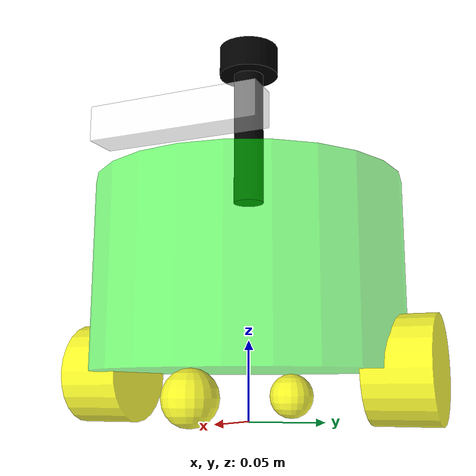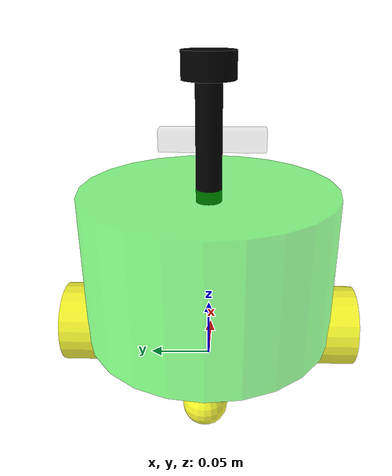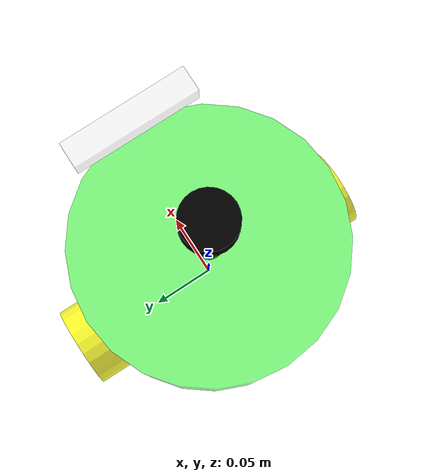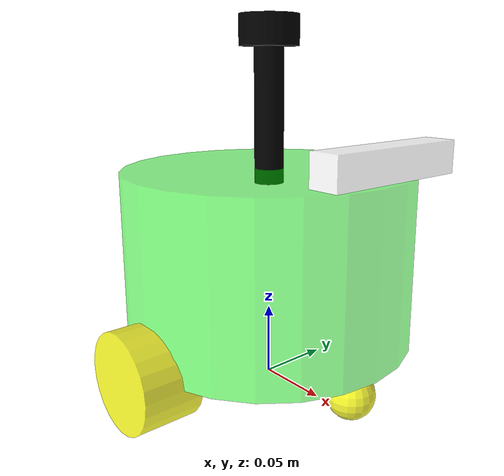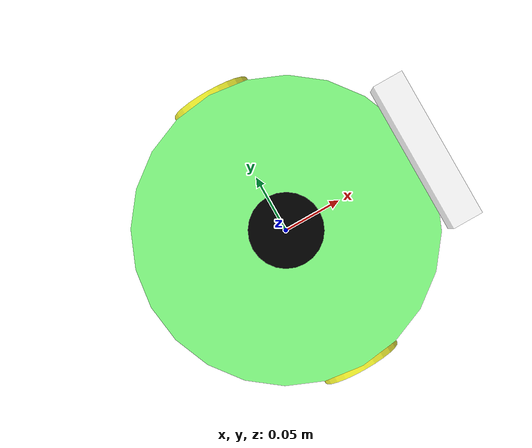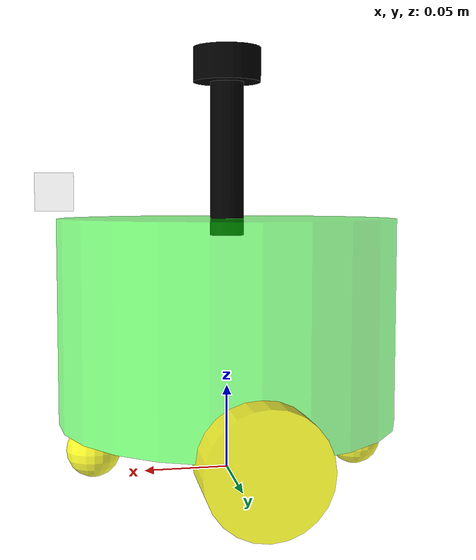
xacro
<?xml version="1.0"?>
<robot xmlns:xacro="http://ros.org/wiki/xacro" name="fishbot">
<!-- 基础部分 base_link -->
<xacro:include filename="$(find fishbot_description)/urdf/fishbot/base.urdf.xacro"/>
<!-- 传感器 -->
<xacro:include filename="$(find fishbot_description)/urdf/fishbot/sensor/imu.urdf.xacro"/>
<xacro:include filename="$(find fishbot_description)/urdf/fishbot/sensor/camera.urdf.xacro"/>
<xacro:include filename="$(find fishbot_description)/urdf/fishbot/sensor/laser.urdf.xacro"/>
<!-- 执行器部分 -->
<xacro:include filename="$(find fishbot_description)/urdf/fishbot/actuator/wheel.urdf.xacro"/>
<xacro:include filename="$(find fishbot_description)/urdf/fishbot/actuator/caster.urdf.xacro"/>
<!-- 插件 -->
<xacro:include filename="$(find fishbot_description)/urdf/fishbot/plugins/gazebo_control_plugin.xacro"/>
<xacro:include filename="$(find fishbot_description)/urdf/fishbot/plugins/gazebo_sensor_plugin.xacro"/>
<xacro:include filename="$(find fishbot_description)/urdf/fishbot/fishbot.ros2control.xacro"/>

<xacro:base_xacro length="0.12" radius="0.10"/>
<xacro:imu_xacro xyz="0.0 0.0 0.02"/>
<xacro:camera_xacro xyz="0.10 0.0 0.075"/>
<xacro:laser_xacro xyz="0.0 0.0 0.10"/>

<xacro:wheel_xacro wheel_name="left_wheel" xyz="0 0.10 -0.06"/>
<xacro:wheel_xacro wheel_name="right_wheel" xyz="0 -0.10 -0.06"/>
<xacro:caster_xacro caster_name="front_caster" xyz="0.08 0.0 -0.076"/>
<xacro:caster_xacro caster_name="back_caster" xyz="-0.08 0.0 -0.076"/>

<xacro:gazebo_sensor_plugin/>
<xacro:fishbot_ros2_control/>

</robot>

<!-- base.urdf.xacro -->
<robot xmlns:xacro="http://ros.org/wiki/xacro">
    <xacro:include filename="$(find fishbot_description)/urdf/fishbot/common_inertia.xacro"/>

    <xacro:macro name="base_xacro" params="length radius">
        <!-- 虚拟部件(用于贴合地面) -->
        <link name="base_footprint"/>

        <!-- 机器人身体部分 -->
        <link name="base_link">
            <!-- 部件的外观描述 -->
            <visual>
                <!-- 沿着自己几何中心的偏移和旋转 -->
                <origin xyz="0.0 0.0 0.0" rpy="0.0 0.0 0.0"/>
                <!-- 几何形状 -->
                <geometry>
                    <!-- 圆柱体 -->
                    <cylinder radius="${radius}" length="${length}"/>
                </geometry>
                <material name="">
                    <color rgba="0.0 1.0 0.0 0.5"/>
                </material>
            </visual>
            <collision>
                <!-- 沿着自己几何中心的偏移和旋转 -->
                <origin xyz="0.0 0.0 0.0" rpy="0.0 0.0 0.0"/>
                <!-- 几何形状 -->
                <geometry>
                    <!-- 圆柱体 -->
                    <cylinder radius="${radius}" length="${length}"/>
                </geometry>
                <material name="Green">
                    <color rgba="0.0 1.0 0.0 0.5"/>
                </material>
            </collision>
            <xacro:cylinder_inertia m="1.0" r="${radius}" h="${length}"/>
        </link>

        <joint name="joint" type="fixed">
            <parent link="base_footprint" />
            <child link="base_link" />
            <origin xyz="0 0 ${length/2.0+0.032-0.001}" rpy="0 0 0" />
        </joint>

        <gazebo reference="base_link">
            <material>Gazebo/Green</material>
        </gazebo>

    </xacro:macro>

</robot>

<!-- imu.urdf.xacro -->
<robot xmlns:xacro="http://ros.org/wiki/xacro">
    <xacro:include filename="$(find fishbot_description)/urdf/fishbot/common_inertia.xacro"/>
    <xacro:macro name="imu_xacro" params="xyz">
        <!-- 机器人的IMU部件 -->
        <link name="imu_link">
            <!-- 部件的外观描述 -->
            <visual>
                <!-- 沿着自己几何中心的偏移和旋转 -->
                <origin xyz="0.0 0.0 0.0" rpy="0.0 0.0 0.0"/>
                <!-- 几何形状 -->
                <geometry>
                    <!-- 正方体 -->
                    <box size="0.02 0.02 0.02"/>
                </geometry>
                <material name="Red">
                    <color rgba="1.0 0.0 0.0 0.5"/>
                </material>
            </visual>
            <collision>
                <!-- 沿着自己几何中心的偏移和旋转 -->
                <origin xyz="0.0 0.0 0.0" rpy="0.0 0.0 0.0"/>
                <!-- 几何形状 -->
                <geometry>
                    <!-- 正方体 -->
                    <box size="0.02 0.02 0.02"/>
                </geometry>
                <material name="Red">
                    <color rgba="1.0 0.0 0.0 0.5"/>
                </material>
            </collision>
            <xacro:box_inertia m="0.05" w="0.02" h="0.02" d="0.02"/>
        </link>
        <!-- 机器人的关节，用于组合机器人的部件 -->
        <joint name="imu_joint" type="fixed">
            <!-- 父部件 -->
            <parent link="base_link" />
            <!-- 子部件 -->
            <child link="imu_link" />
            <!-- 子部件相对父部件的平移和旋转 -->
            <origin xyz="${xyz}" rpy="0 0 0" />
        </joint>

        <gazebo reference="imu_link">
            <material>Gazebo/Red</material>
        </gazebo>
    </xacro:macro>
</robot>

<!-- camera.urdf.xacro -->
<robot xmlns:xacro="http://ros.org/wiki/xacro">
    <xacro:include filename="$(find fishbot_description)/urdf/fishbot/common_inertia.xacro"/>
    <xacro:macro name="camera_xacro" params="xyz">
        <link name="camera_link">
            <!-- 部件的外观描述 -->
            <visual>
                <!-- 沿着自己几何中心的偏移和旋转 -->
                <origin xyz="0.0 0.0 0.0" rpy="0.0 0.0 0.0"/>
                <!-- 几何形状 -->
                <geometry>
                    <!-- 正方体 -->
                    <box size="0.02 0.10 0.02"/>
                </geometry>
                <material name="white">
                    <color rgba="1.0 1.0 1.0 0.5"/>
                </material>
            </visual>
            <collision>
                <!-- 沿着自己几何中心的偏移和旋转 -->
                <origin xyz="0.0 0.0 0.0" rpy="0.0 0.0 0.0"/>
                <!-- 几何形状 -->
                <geometry>
                    <!-- 正方体 -->
                    <box size="0.02 0.10 0.02"/>
                </geometry>
                <material name="white">
                    <color rgba="1.0 1.0 1.0 0.5"/>
                </material>
            </collision>
            <xacro:box_inertia m="0.1" w="0.02" h="0.10" d="0.02"/>
        </link>

        <joint name="camera_joint" type="fixed">
            <!-- 父部件 -->
            <parent link="base_link" />
            <!-- 子部件 -->
            <child link="camera_link" />
            <!-- 子部件相对父部件的平移和旋转 -->
            <origin xyz="${xyz}" rpy="0 0 0" />
        </joint>

        <!-- 深度相机z轴朝前，添加虚拟部件进行修正 -->

        <gazebo reference="camera_link">
            <material>Gazebo/White</material>
        </gazebo>
    </xacro:macro>
</robot>

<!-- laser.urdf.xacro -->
<robot xmlns:xacro="http://ros.org/wiki/xacro">
    <xacro:include filename="$(find fishbot_description)/urdf/fishbot/common_inertia.xacro"/>
    <xacro:macro name="laser_xacro" params="xyz">
        <!-- 雷达支撑杆 -->
        <link name="laser_cylinder_link">
            <!-- 部件的外观描述 -->
            <visual>
                <!-- 沿着自己几何中心的偏移和旋转 -->
                <origin xyz="0.0 0.0 0.0" rpy="0.0 0.0 0.0"/>
                <!-- 几何形状 -->
                <geometry>
                    <!-- 正方体 -->
                    <cylinder radius="0.01" length="0.1"/>
                </geometry>
                <material name="black">
                    <color rgba="0.0 0.0 0.0 1.0"/>
                </material>
            </visual>
            <collision>
                <!-- 沿着自己几何中心的偏移和旋转 -->
                <origin xyz="0.0 0.0 0.0" rpy="0.0 0.0 0.0"/>
                <!-- 几何形状 -->
                <geometry>
                    <!-- 正方体 -->
                    <cylinder radius="0.01" length="0.1"/>
                </geometry>
                <material name="black">
                    <color rgba="0.0 0.0 0.0 1.0"/>
                </material>
            </collision>
            <xacro:cylinder_inertia m="0.05" r="0.01" h="0.1"/>
        </link>
        <!-- 雷达 -->
        <link name="laser_link">
            <!-- 部件的外观描述 -->
            <visual>
                <!-- 沿着自己几何中心的偏移和旋转 -->
                <origin xyz="0.0 0.0 0.0" rpy="0.0 0.0 0.0"/>
                <!-- 几何形状 -->
                <geometry>
                    <!-- 正方体 -->
                    <cylinder radius="0.02" length="0.02"/>
                </geometry>
                <material name="black">
                    <color rgba="0.0 0.0 0.0 1.0"/>
                </material>
            </visual>
            <collision>
                <!-- 沿着自己几何中心的偏移和旋转 -->
                <origin xyz="0.0 0.0 0.0" rpy="0.0 0.0 0.0"/>
                <!-- 几何形状 -->
                <geometry>
                    <!-- 正方体 -->
                    <cylinder radius="0.02" length="0.02"/>
                </geometry>
                <material name="black">
                    <color rgba="0.0 0.0 0.0 1.0"/>
                </material>
            </collision>
            <xacro:cylinder_inertia m="0.10" r="0.02" h="0.02"/>
        </link>
        <!-- 机器人的关节，用于组合机器人的部件 -->
        <joint name="laser_joint" type="fixed">
            <!-- 父部件 -->
            <parent link="laser_cylinder_link" />
            <!-- 子部件 -->
            <child link="laser_link" />
            <!-- 子部件相对父部件的平移和旋转 -->
            <origin xyz="0.0 0.0 0.05" rpy="0 0 0" />
        </joint>
        <joint name="laser_cylinder_joint" type="fixed">
            <!-- 父部件 -->
            <parent link="base_link" />
            <!-- 子部件 -->
            <child link="laser_cylinder_link" />
            <!-- 子部件相对父部件的平移和旋转 -->
            <origin xyz="${xyz}" rpy="0 0 0" />
        </joint>

        <gazebo reference="laser_cylinder_link">
            <material>Gazebo/Black</material>
        </gazebo>
        <gazebo reference="laser_link">
            <material>Gazebo/Black</material>
        </gazebo>

    </xacro:macro>
</robot>

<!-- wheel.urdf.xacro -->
<robot xmlns:xacro="http://ros.org/wiki/xacro">
    <xacro:include filename="$(find fishbot_description)/urdf/fishbot/common_inertia.xacro"/>
    <xacro:macro name="wheel_xacro" params="wheel_name xyz">
        <!-- 机器人的IMU部件 -->
        <link name="${wheel_name}_link">
            <!-- 部件的外观描述 -->
            <visual>
                <!-- 沿着自己几何中心的偏移和旋转 -->
                <origin xyz="0.0 0.0 0.0" rpy="1.57079 0.0 0.0"/>
                <!-- 几何形状 -->
                <geometry>
                    <!-- 正方体 -->
                    <cylinder radius="0.0325" length="0.04"/>
                </geometry>
                <material name="yellow">
                    <color rgba="1.0 1.0 0.0 0.8"/>
                </material>
            </visual>
            <collision>
                <!-- 沿着自己几何中心的偏移和旋转 -->
                <origin xyz="0.0 0.0 0.0" rpy="1.57079 0.0 0.0"/>
                <!-- 几何形状 -->
                <geometry>
                    <!-- 正方体 -->
                    <cylinder radius="0.0325" length="0.04"/>
                </geometry>
                <material name="yellow">
                    <color rgba="1.0 1.0 0.0 0.8"/>
                </material>
            </collision>
            <xacro:cylinder_inertia m="0.05" r="0.0325" h="0.04"/>
        </link>
        <!-- 机器人的关节，用于组合机器人的部件 -->
        <joint name="${wheel_name}_joint" type="continuous">
            <parent link="base_link" />
            <child link="${wheel_name}_link" />
            <origin xyz="${xyz}" rpy="0 0 0" />
            <!-- 绕y轴旋转 -->
            <axis xyz="0 1 0"/>
        </joint>

        <gazebo reference="${wheel_name}_link">
            <mu1 value="20.0"/> <!-- 切向摩擦系数 -->
            <mu2 value="20.0"/> <!-- 法向摩擦系数 -->
            <kp value="1000000000.0"/> <!-- 接触的刚度系数 -->
            <kd value="1.0"/> <!-- 阻尼系数 -->
        </gazebo>
    </xacro:macro>
</robot>

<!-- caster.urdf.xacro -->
<robot xmlns:xacro="http://ros.org/wiki/xacro">
    <xacro:include filename="$(find fishbot_description)/urdf/fishbot/common_inertia.xacro"/>
    <xacro:macro name="caster_xacro" params="caster_name xyz">
        <!-- 机器人的IMU部件 -->
        <link name="${caster_name}_link">
            <visual>
                <origin xyz="0.0 0.0 0.0" rpy="0.0 0.0 0.0"/>
                <geometry>
                    <sphere radius="0.016"/>
                </geometry>
                <material name="yellow">
                    <color rgba="1.0 1.0 0.0 0.8"/>
                </material>
            </visual>
            <collision>
                <origin xyz="0.0 0.0 0.0" rpy="0.0 0.0 0.0"/>
                <geometry>
                    <sphere radius="0.016"/>
                </geometry>
                <material name="yellow">
                    <color rgba="1.0 1.0 0.0 0.8"/>
                </material>
            </collision>
            <xacro:sphere_inertia m="1.0" r="0.016"/>
        </link>
        <!-- 机器人的关节，用于组合机器人的部件 -->
        <joint name="${caster_name}_joint" type="fixed">
            <parent link="base_link" />
            <child link="${caster_name}_link" />
            <origin xyz="${xyz}" rpy="0 0 0" />
        </joint>

        <gazebo reference="${caster_name}_link">
            <mu1 value="0.0"/> <!-- 切向摩擦系数 -->
            <mu2 value="0.0"/> <!-- 法向摩擦系数 -->
            <kp value="1000000000.0"/> <!-- 接触的刚度系数 -->
            <kd value="1.0"/> <!-- 阻尼系数 -->
        </gazebo>
    </xacro:macro>
</robot>
